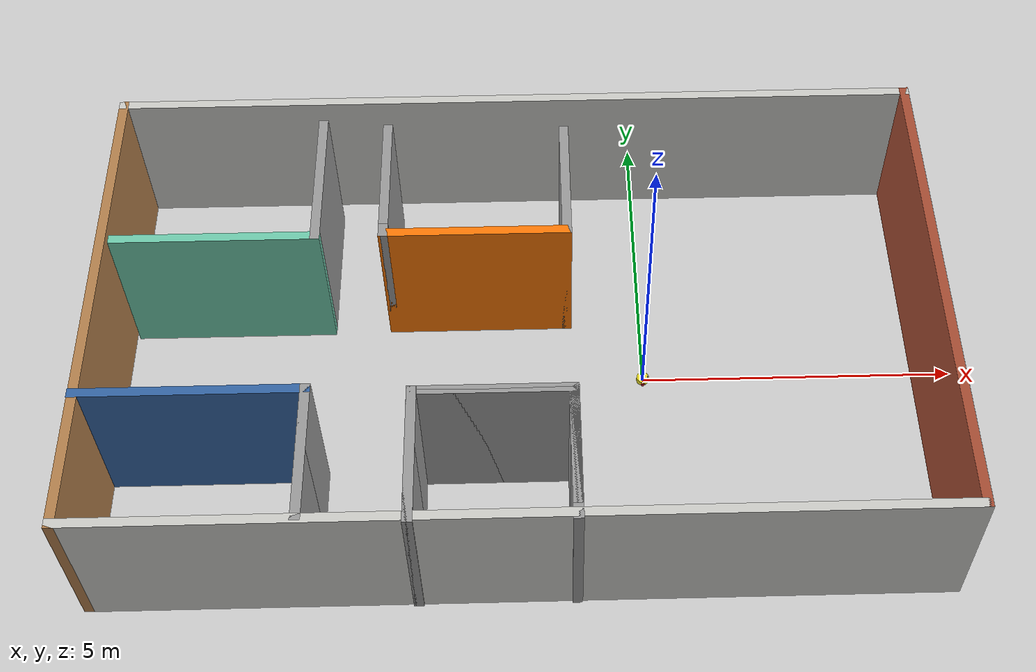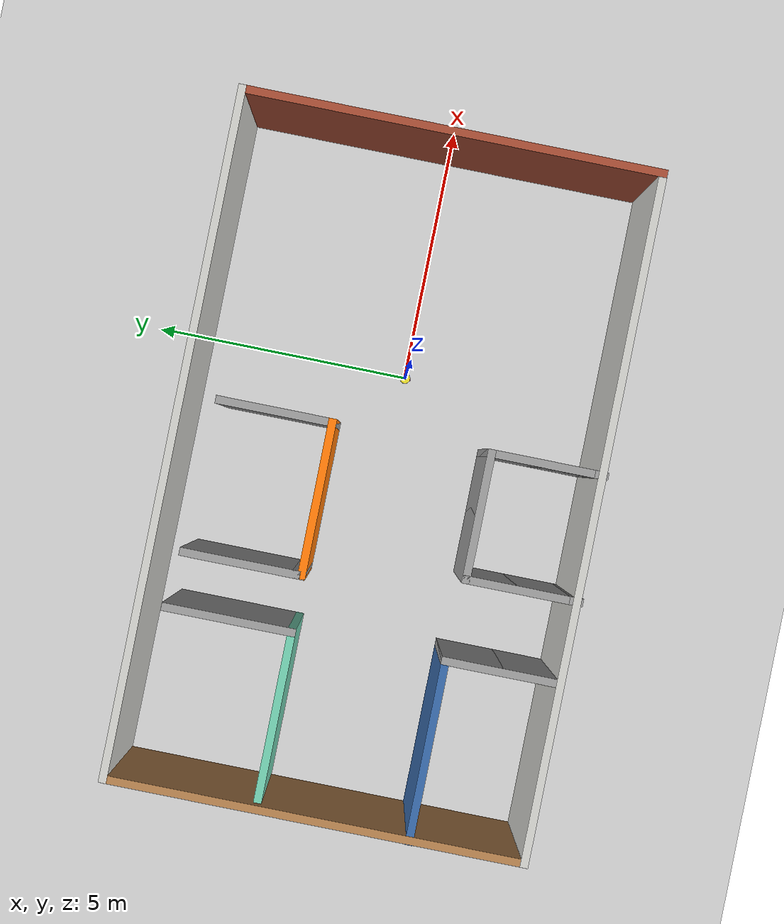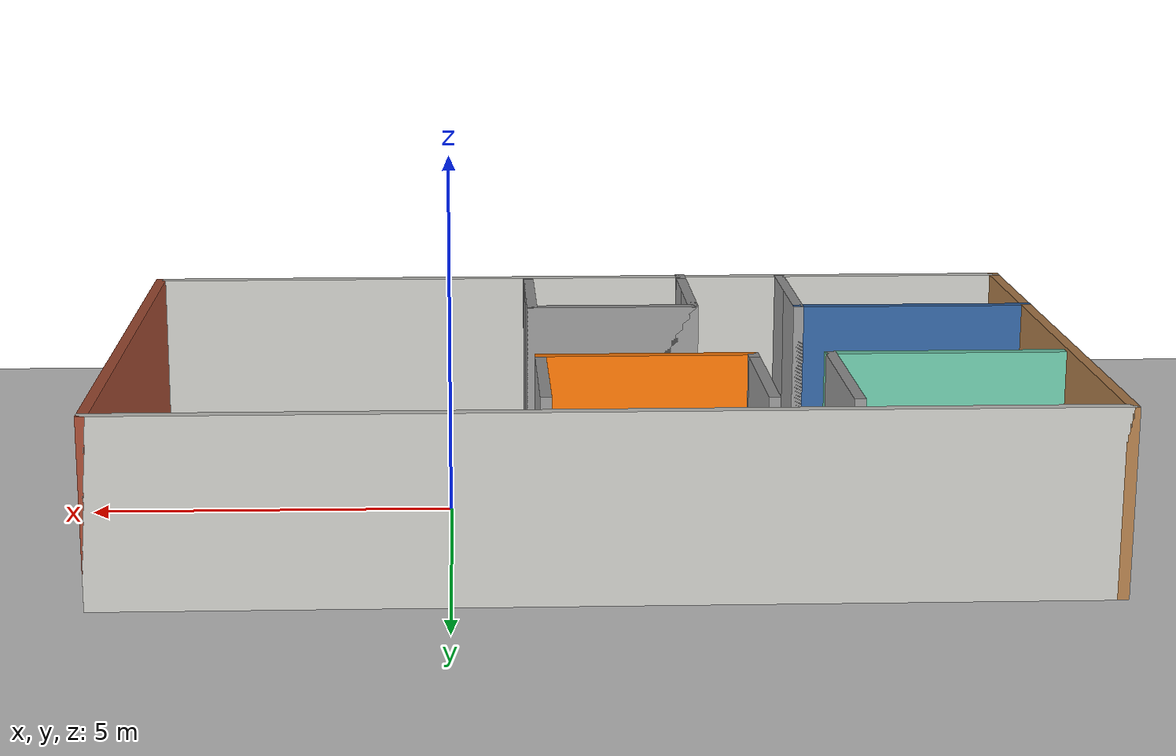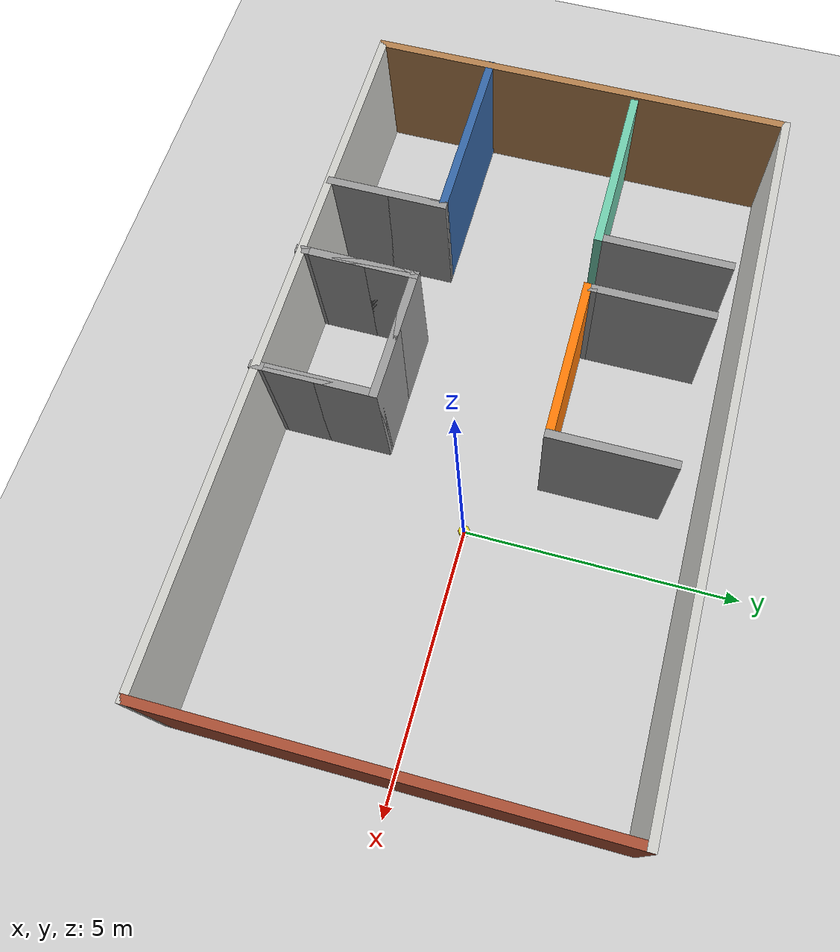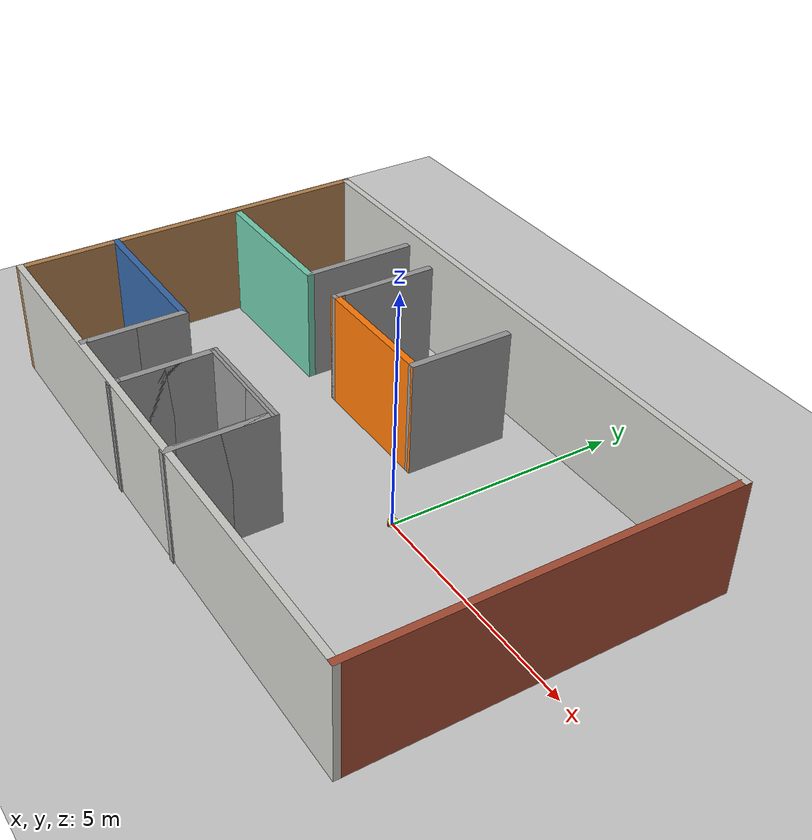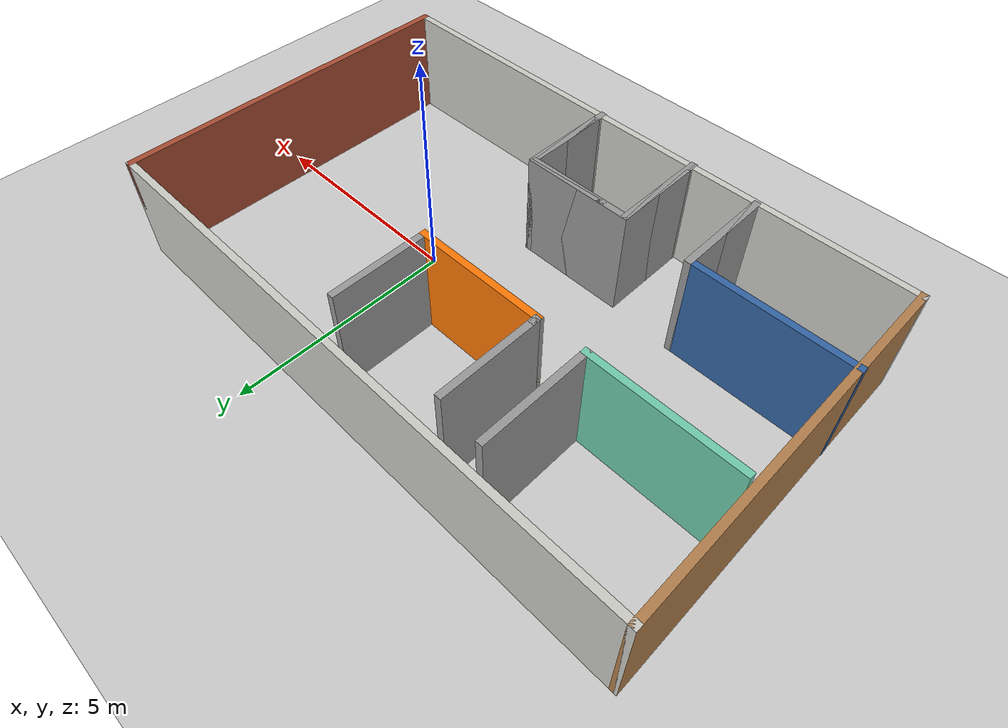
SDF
<sdf version="1.6">
 <world name="default">
  <light name="sun" type="directional">
   <pose>0 0 10 0 -0 0</pose>
   <diffuse>0.8 0.8 0.8 1</diffuse>
   <specular>0.2 0.2 0.2 1</specular>
   <attenuation>
    <range>1000</range>
    <constant>0.9</constant>
    <linear>0.01</linear>
    <quadratic>0.001</quadratic>
   </attenuation>
   <direction>-0.5 0.1 -0.9</direction>
   <spot><inner_angle>0</inner_angle><outer_angle>0</outer_angle><falloff>0</falloff></spot>
  </light>
  <model name="ground_plane">
   <static>1</static>
   <link name="link">
    <collision name="collision">
     <geometry><plane><normal>0 0 1</normal><size>100 100</size></plane></geometry>
     <surface>
      <contact><collide_bitmask>65535</collide_bitmask></contact>
      <friction><ode><mu>100</mu><mu2>50</mu2></ode></friction>
     </surface>
    </collision>
    <visual name="visual">
     <cast_shadows>0</cast_shadows>
     <geometry><plane><normal>0 0 1</normal><size>100 100</size></plane></geometry>
     <material>
      <script><uri>file://media/materials/scripts/gazebo.material</uri><name>Gazebo/Grey</name></script>
     </material>
    </visual>
   </link>
  </model>
  <gravity>0 0 -9.8</gravity>
  <magnetic_field>6e-06 2.3e-05 -4.2e-05</magnetic_field>
  <atmosphere type="adiabatic"/>
  <physics name="default_physics" default="0" type="ode">
   <max_step_size>0.001</max_step_size>
   <real_time_factor>1</real_time_factor>
   <real_time_update_rate>1000</real_time_update_rate>
  </physics>
  <scene><ambient>0.4 0.4 0.4 1</ambient><background>0.7 0.7 0.7 1</background><shadows>1</shadows></scene>
  <spherical_coordinates>
   <surface_model>EARTH_WGS84</surface_model>
   <latitude_deg>0</latitude_deg>
   <longitude_deg>0</longitude_deg>
   <elevation>0</elevation>
   <heading_deg>0</heading_deg>
  </spherical_coordinates>
  <model name="box_house">
   <pose>-1.97643 0.05996 0 0 -0 0</pose>
   <link name="Wall_1">
    <collision name="Wall_1_Collision">
     <geometry><box><size>13 0.15 2.5</size></box></geometry>
     <pose>0 0 1.25 0 -0 0</pose>
    </collision>
    <visual name="Wall_1_Visual">
     <pose>0 0 1.25 0 -0 0</pose>
     <geometry><box><size>13 0.15 2.5</size></box></geometry>
     <material>
      <script><uri>file://media/materials/scripts/gazebo.material</uri><name>Gazebo/CeilingTiled</name></script>
      <ambient>1 1 1 1</ambient>
     </material>
     <meta><layer>0</layer></meta>
    </visual>
    <pose>0 3.925 0 0 -0 0</pose>
   </link>
   <link name="Wall_2">
    <collision name="Wall_2_Collision">
     <geometry><box><size>8 0.15 2.5</size></box></geometry>
     <pose>0 0 1.25 0 -0 0</pose>
    </collision>
    <visual name="Wall_2_Visual">
     <pose>0 0 1.25 0 -0 0</pose>
     <geometry><box><size>8 0.15 2.5</size></box></geometry>
     <material>
      <script><uri>file://media/materials/scripts/gazebo.material</uri><name>Gazebo/Bricks</name></script>
      <ambient>1 1 1 1</ambient>
     </material>
     <meta><layer>0</layer></meta>
    </visual>
    <pose>6.425 -0 0 0 -0 -1.5708</pose>
   </link>
   <link name="Wall_3">
    <collision name="Wall_3_Collision">
     <geometry><box><size>13 0.15 2.5</size></box></geometry>
     <pose>0 0 1.25 0 -0 0</pose>
    </collision>
    <visual name="Wall_3_Visual">
     <pose>0 0 1.25 0 -0 0</pose>
     <geometry><box><size>13 0.15 2.5</size></box></geometry>
     <material>
      <script><uri>file://media/materials/scripts/gazebo.material</uri><name>Gazebo/CeilingTiled</name></script>
      <ambient>1 1 1 1</ambient>
     </material>
     <meta><layer>0</layer></meta>
    </visual>
    <pose>0 -3.925 0 0 -0 3.14159</pose>
   </link>
   <link name="Wall_4">
    <collision name="Wall_4_Collision">
     <geometry><box><size>8 0.15 2.5</size></box></geometry>
     <pose>0 0 1.25 0 -0 0</pose>
    </collision>
    <visual name="Wall_4_Visual">
     <pose>0 0 1.25 0 -0 0</pose>
     <geometry><box><size>8 0.15 2.5</size></box></geometry>
     <material>
      <script><uri>file://media/materials/scripts/gazebo.material</uri><name>Gazebo/Wood</name></script>
      <ambient>1 1 1 1</ambient>
     </material>
     <meta><layer>0</layer></meta>
    </visual>
    <pose>-6.425 -0 0 0 -0 1.5708</pose>
   </link>
   <static>1</static>
  </model>
  <audio><device>default</device></audio>
  <model name="mycar">
   <link name="base_footprint">
    <inertial>
     <pose>0.00127 0 0.093611 0 -0 0</pose>
     <mass>0.63</mass>
     <inertia>
      <ixx>0.00557395</ixx>
      <ixy>0</ixy>
      <ixz>-1.11111e-05</ixz>
      <iyy>0.00563694</iyy>
      <iyz>0</iyz>
      <izz>0.00261003</izz>
     </inertia>
    </inertial>
    <collision name="base_footprint_fixed_joint_lump__base_link_collision">
     <pose>0 0 0.055 0 -0 0</pose>
     <geometry><cylinder><length>0.08</length><radius>0.1</radius></cylinder></geometry>
    </collision>
    <collision name="base_footprint_fixed_joint_lump__camera_collision_1">
     <pose>0.08 0 0.1075 0 -0 0</pose>
     <geometry><box><size>0.01 0.025 0.025</size></box></geometry>
    </collision>
    <collision name="base_footprint_fixed_joint_lump__support_collision_2">
     <pose>0 0 0.17 0 -0 0</pose>
     <geometry><cylinder><length>0.15</length><radius>0.01</radius></cylinder></geometry>
    </collision>
    <collision name="base_footprint_fixed_joint_lump__laser_collision_3">
     <pose>0 0 0.27 0 -0 0</pose>
     <geometry><cylinder><length>0.05</length><radius>0.03</radius></cylinder></geometry>
    </collision>
    <visual name="base_footprint_visual"><geometry><sphere><radius>0.001</radius></sphere></geometry></visual>
    <visual name="base_footprint_fixed_joint_lump__base_link_visual_1">
     <pose>0 0 0.055 0 -0 0</pose>
     <geometry><cylinder><length>0.08</length><radius>0.1</radius></cylinder></geometry>
     <material>
      <script><name>Gazebo/Yellow</name><uri>file://media/materials/scripts/gazebo.material</uri></script>
     </material>
    </visual>
    <visual name="base_footprint_fixed_joint_lump__camera_visual_2">
     <pose>0.08 0 0.1075 0 -0 0</pose>
     <geometry><box><size>0.01 0.025 0.025</size></box></geometry>
     <material>
      <script><name>Gazebo/Blue</name><uri>file://media/materials/scripts/gazebo.material</uri></script>
     </material>
    </visual>
    <visual name="base_footprint_fixed_joint_lump__support_visual_3">
     <pose>0 0 0.17 0 -0 0</pose>
     <geometry><cylinder><length>0.15</length><radius>0.01</radius></cylinder></geometry>
     <material>
      <script><name>Gazebo/White</name><uri>file://media/materials/scripts/gazebo.material</uri></script>
     </material>
    </visual>
    <visual name="base_footprint_fixed_joint_lump__laser_visual_4">
     <pose>0 0 0.27 0 -0 0</pose>
     <geometry><cylinder><length>0.05</length><radius>0.03</radius></cylinder></geometry>
     <material>
      <script><name>Gazebo/Black</name><uri>file://media/materials/scripts/gazebo.material</uri></script>
     </material>
    </visual>
    <sensor name="camera_node" type="camera">
     <update_rate>30</update_rate>
     <camera name="head">
      <horizontal_fov>1.39626</horizontal_fov>
      <image><width>1280</width><height>720</height><format>R8G8B8</format></image>
      <clip><near>0.02</near><far>300</far></clip>
      <noise><type>gaussian</type><mean>0</mean><stddev>0.007</stddev></noise>
     </camera>
     <plugin name="gazebo_camera" filename="libgazebo_ros_camera.so">
      <alwaysOn>1</alwaysOn>
      <updateRate>0.0</updateRate>
      <cameraName>/camera</cameraName>
      <imageTopicName>image_raw</imageTopicName>
      <cameraInfoTopicName>camera_info</cameraInfoTopicName>
      <frameName>camera</frameName>
      <hackBaseline>0.07</hackBaseline>
      <distortionK1>0.0</distortionK1>
      <distortionK2>0.0</distortionK2>
      <distortionK3>0.0</distortionK3>
      <distortionT1>0.0</distortionT1>
      <distortionT2>0.0</distortionT2>
      <robotNamespace>/</robotNamespace>
     </plugin>
     <pose>0.08 0 0.1075 0 -0 0</pose>
    </sensor>
   </link>
   <link name="back_wheel">
    <pose>-0.0925 0 0.0075 0 -0 0</pose>
    <inertial>
     <mass>0.03</mass>
     <inertia>
      <ixx>6.75e-07</ixx>
      <ixy>0</ixy>
      <ixz>0</ixz>
      <iyy>6.75e-07</iyy>
      <iyz>0</iyz>
      <izz>6.75e-07</izz>
     </inertia>
    </inertial>
    <collision name="back_wheel_collision">
     <geometry><sphere><radius>0.0075</radius></sphere></geometry>
    </collision>
    <visual name="back_wheel_visual">
     <geometry><sphere><radius>0.0075</radius></sphere></geometry>
     <material>
      <script><name>Gazebo/Red</name><uri>file://media/materials/scripts/gazebo.material</uri></script>
     </material>
    </visual>
   </link>
   <joint name="back_wheel2base_link" type="revolute">
    <child>back_wheel</child>
    <parent>base_footprint</parent>
    <axis>
     <xyz>1 1 1</xyz>
     <limit><lower>-1e+16</lower><upper>1e+16</upper></limit>
     <dynamics><spring_reference>0</spring_reference><spring_stiffness>0</spring_stiffness></dynamics>
     <use_parent_model_frame>1</use_parent_model_frame>
    </axis>
   </joint>
   <link name="front_wheel">
    <pose>0.0925 0 0.0075 0 -0 0</pose>
    <inertial>
     <mass>0.03</mass>
     <inertia>
      <ixx>6.75e-07</ixx>
      <ixy>0</ixy>
      <ixz>0</ixz>
      <iyy>6.75e-07</iyy>
      <iyz>0</iyz>
      <izz>6.75e-07</izz>
     </inertia>
    </inertial>
    <collision name="front_wheel_collision">
     <geometry><sphere><radius>0.0075</radius></sphere></geometry>
    </collision>
    <visual name="front_wheel_visual">
     <geometry><sphere><radius>0.0075</radius></sphere></geometry>
     <material>
      <script><name>Gazebo/Red</name><uri>file://media/materials/scripts/gazebo.material</uri></script>
     </material>
    </visual>
   </link>
   <joint name="front_wheel2base_link" type="revolute">
    <child>front_wheel</child>
    <parent>base_footprint</parent>
    <axis>
     <xyz>1 1 1</xyz>
     <limit><lower>-1e+16</lower><upper>1e+16</upper></limit>
     <dynamics><spring_reference>0</spring_reference><spring_stiffness>0</spring_stiffness></dynamics>
     <use_parent_model_frame>1</use_parent_model_frame>
    </axis>
   </joint>
   <link name="left_wheel">
    <pose>0 0.1 0.0325 0 -0 0</pose>
    <inertial>
     <mass>0.05</mass>
     <inertia>
      <ixx>1.41406e-05</ixx>
      <ixy>0</ixy>
      <ixz>0</ixz>
      <iyy>1.41406e-05</iyy>
      <iyz>0</iyz>
      <izz>2.64063e-05</izz>
     </inertia>
    </inertial>
    <collision name="left_wheel_collision">
     <pose>0 0 0 1.5708 -0 0</pose>
     <geometry><cylinder><length>0.015</length><radius>0.0325</radius></cylinder></geometry>
    </collision>
    <visual name="left_wheel_visual">
     <pose>0 0 0 1.5708 -0 0</pose>
     <geometry><cylinder><length>0.015</length><radius>0.0325</radius></cylinder></geometry>
     <material>
      <script><name>Gazebo/Red</name><uri>file://media/materials/scripts/gazebo.material</uri></script>
     </material>
    </visual>
   </link>
   <joint name="left_wheel2base_link" type="revolute">
    <child>left_wheel</child>
    <parent>base_footprint</parent>
    <axis>
     <xyz>0 1 0</xyz>
     <limit><lower>-1e+16</lower><upper>1e+16</upper></limit>
     <dynamics><spring_reference>0</spring_reference><spring_stiffness>0</spring_stiffness></dynamics>
     <use_parent_model_frame>1</use_parent_model_frame>
    </axis>
   </joint>
   <link name="right_wheel">
    <pose>0 -0.1 0.0325 0 -0 0</pose>
    <inertial>
     <mass>0.05</mass>
     <inertia>
      <ixx>1.41406e-05</ixx>
      <ixy>0</ixy>
      <ixz>0</ixz>
      <iyy>1.41406e-05</iyy>
      <iyz>0</iyz>
      <izz>2.64063e-05</izz>
     </inertia>
    </inertial>
    <collision name="right_wheel_collision">
     <pose>0 0 0 1.5708 -0 0</pose>
     <geometry><cylinder><length>0.015</length><radius>0.0325</radius></cylinder></geometry>
    </collision>
    <visual name="right_wheel_visual">
     <pose>0 0 0 1.5708 -0 0</pose>
     <geometry><cylinder><length>0.015</length><radius>0.0325</radius></cylinder></geometry>
     <material>
      <script><name>Gazebo/Red</name><uri>file://media/materials/scripts/gazebo.material</uri></script>
     </material>
    </visual>
   </link>
   <joint name="right_wheel2base_link" type="revolute">
    <child>right_wheel</child>
    <parent>base_footprint</parent>
    <axis>
     <xyz>0 1 0</xyz>
     <limit><lower>-1e+16</lower><upper>1e+16</upper></limit>
     <dynamics><spring_reference>0</spring_reference><spring_stiffness>0</spring_stiffness></dynamics>
     <use_parent_model_frame>1</use_parent_model_frame>
    </axis>
   </joint>
   <static>0</static>
   <plugin name="differential_drive_controller" filename="libgazebo_ros_diff_drive.so">
    <rosDebugLevel>Debug</rosDebugLevel>
    <publishWheelTF>1</publishWheelTF>
    <robotNamespace>/</robotNamespace>
    <publishTf>1</publishTf>
    <publishWheelJointState>1</publishWheelJointState>
    <alwaysOn>1</alwaysOn>
    <updateRate>100.0</updateRate>
    <legacyMode>1</legacyMode>
    <leftJoint>left_wheel2base_link</leftJoint>
    <rightJoint>right_wheel2base_link</rightJoint>
    <wheelSeparation>0.2</wheelSeparation>
    <wheelDiameter>0.065</wheelDiameter>
    <broadcastTF>1</broadcastTF>
    <wheelTorque>30</wheelTorque>
    <wheelAcceleration>1.8</wheelAcceleration>
    <commandTopic>cmd_vel</commandTopic>
    <odometryFrame>odom</odometryFrame>
    <odometryTopic>odom</odometryTopic>
    <robotBaseFrame>base_footprint</robotBaseFrame>
   </plugin>
   <pose>0.00013 -0.000116 0 0 0 -0.001323</pose>
  </model>
  <model name="room">
   <pose>-4.79399 -0.205593 0 0 -0 0</pose>
   <link name="Wall_13">
    <collision name="Wall_13_Collision">
     <geometry><box><size>2.5 0.15 2.5</size></box></geometry>
     <pose>0 0 1.25 0 -0 0</pose>
    </collision>
    <visual name="Wall_13_Visual">
     <pose>0 0 1.25 0 -0 0</pose>
     <geometry><box><size>2.5 0.15 2.5</size></box></geometry>
     <material>
      <script><uri>file://media/materials/scripts/gazebo.material</uri><name>Gazebo/Grey</name></script>
      <ambient>1 1 1 1</ambient>
     </material>
     <meta><layer>0</layer></meta>
    </visual>
    <pose>-0.308094 2.516 0 0 -0 -1.5708</pose>
   </link>
   <link name="Wall_14">
    <collision name="Wall_14_Collision">
     <geometry><box><size>3.25 0.15 2.5</size></box></geometry>
     <pose>0 0 1.25 0 -0 0</pose>
    </collision>
    <visual name="Wall_14_Visual">
     <pose>0 0 1.25 0 -0 0</pose>
     <geometry><box><size>3.25 0.15 2.5</size></box></geometry>
     <material>
      <script><uri>file://media/materials/scripts/gazebo.material</uri><name>Gazebo/Grey</name></script>
      <ambient>0.435294 0.796078 0.67451 1</ambient>
     </material>
     <meta><layer>0</layer></meta>
    </visual>
    <pose>-1.85809 1.341 0 0 -0 3.14159</pose>
   </link>
   <link name="Wall_16">
    <collision name="Wall_16_Collision">
     <geometry><box><size>2 0.15 2.5</size></box></geometry>
     <pose>0 0 1.25 0 -0 0</pose>
    </collision>
    <visual name="Wall_16_Visual">
     <pose>0 0 1.25 0 -0 0</pose>
     <geometry><box><size>2 0.15 2.5</size></box></geometry>
     <material>
      <script><uri>file://media/materials/scripts/gazebo.material</uri><name>Gazebo/Grey</name></script>
      <ambient>1 1 1 1</ambient>
     </material>
     <meta><layer>0</layer></meta>
    </visual>
    <pose>1.26601 -2.516 0 0 -0 -1.5708</pose>
   </link>
   <link name="Wall_17">
    <collision name="Wall_17_Collision">
     <geometry><box><size>2 0.15 2.5</size></box></geometry>
     <pose>0 0 1.25 0 -0 0</pose>
    </collision>
    <visual name="Wall_17_Visual">
     <pose>0 0 1.25 0 -0 0</pose>
     <geometry><box><size>2 0.15 2.5</size></box></geometry>
     <material>
      <script><uri>file://media/materials/scripts/gazebo.material</uri><name>Gazebo/Grey</name></script>
      <ambient>1 1 1 1</ambient>
     </material>
     <meta><layer>0</layer></meta>
    </visual>
    <pose>1.26601 -2.516 0 0 -0 1.5708</pose>
   </link>
   <link name="Wall_18">
    <collision name="Wall_18_Collision">
     <geometry><box><size>0.15 0.15 2.5</size></box></geometry>
     <pose>0 0 1.25 0 -0 0</pose>
    </collision>
    <visual name="Wall_18_Visual">
     <pose>0 0 1.25 0 -0 0</pose>
     <geometry><box><size>0.15 0.15 2.5</size></box></geometry>
     <material>
      <script><uri>file://media/materials/scripts/gazebo.material</uri><name>Gazebo/Grey</name></script>
      <ambient>1 1 1 1</ambient>
     </material>
     <meta><layer>0</layer></meta>
    </visual>
    <pose>1.26601 -1.591 0 0 -0 0</pose>
   </link>
   <link name="Wall_19">
    <collision name="Wall_19_Collision">
     <geometry><box><size>2.5 0.15 2.5</size></box></geometry>
     <pose>0 0 1.25 0 -0 0</pose>
    </collision>
    <visual name="Wall_19_Visual">
     <pose>0 0 1.25 0 -0 0</pose>
     <geometry><box><size>2.5 0.15 2.5</size></box></geometry>
     <material>
      <script><uri>file://media/materials/scripts/gazebo.material</uri><name>Gazebo/Grey</name></script>
      <ambient>1 1 1 1</ambient>
     </material>
     <meta><layer>0</layer></meta>
    </visual>
    <pose>2.44101 -1.591 0 0 -0 0</pose>
   </link>
   <link name="Wall_20">
    <collision name="Wall_20_Collision">
     <geometry><box><size>2 0.15 2.5</size></box></geometry>
     <pose>0 0 1.25 0 -0 0</pose>
    </collision>
    <visual name="Wall_20_Visual">
     <pose>0 0 1.25 0 -0 0</pose>
     <geometry><box><size>2 0.15 2.5</size></box></geometry>
     <material>
      <script><uri>file://media/materials/scripts/gazebo.material</uri><name>Gazebo/Grey</name></script>
      <ambient>1 1 1 1</ambient>
     </material>
     <meta><layer>0</layer></meta>
    </visual>
    <pose>3.61601 -2.516 0 0 -0 -1.5708</pose>
   </link>
   <link name="Wall_21">
    <collision name="Wall_21_Collision">
     <geometry><box><size>2 0.15 2.5</size></box></geometry>
     <pose>0 0 1.25 0 -0 0</pose>
    </collision>
    <visual name="Wall_21_Visual">
     <pose>0 0 1.25 0 -0 0</pose>
     <geometry><box><size>2 0.15 2.5</size></box></geometry>
     <material>
      <script><uri>file://media/materials/scripts/gazebo.material</uri><name>Gazebo/Grey</name></script>
      <ambient>1 1 1 1</ambient>
     </material>
     <meta><layer>0</layer></meta>
    </visual>
    <pose>3.61601 -2.516 0 0 -0 1.5708</pose>
   </link>
   <link name="Wall_22">
    <collision name="Wall_22_Collision">
     <geometry><box><size>2.5 0.15 2.5</size></box></geometry>
     <pose>0 0 1.25 0 -0 0</pose>
    </collision>
    <visual name="Wall_22_Visual">
     <pose>0 0 1.25 0 -0 0</pose>
     <geometry><box><size>2.5 0.15 2.5</size></box></geometry>
     <material>
      <script><uri>file://media/materials/scripts/gazebo.material</uri><name>Gazebo/Grey</name></script>
      <ambient>1 1 1 1</ambient>
     </material>
     <meta><layer>0</layer></meta>
    </visual>
    <pose>2.44101 -1.591 0 0 -0 3.14159</pose>
   </link>
   <link name="Wall_23">
    <collision name="Wall_23_Collision">
     <geometry><box><size>2.25 0.15 2.5</size></box></geometry>
     <pose>0 0 1.25 0 -0 0</pose>
    </collision>
    <visual name="Wall_23_Visual">
     <pose>0 0 1.25 0 -0 0</pose>
     <geometry><box><size>2.25 0.15 2.5</size></box></geometry>
     <material>
      <script><uri>file://media/materials/scripts/gazebo.material</uri><name>Gazebo/Grey</name></script>
      <ambient>1 1 1 1</ambient>
     </material>
     <meta><layer>0</layer></meta>
    </visual>
    <pose>1.26601 -2.641 0 0 -0 -1.5708</pose>
   </link>
   <link name="Wall_24">
    <collision name="Wall_24_Collision">
     <geometry><box><size>2.25 0.15 2.5</size></box></geometry>
     <pose>0 0 1.25 0 -0 0</pose>
    </collision>
    <visual name="Wall_24_Visual">
     <pose>0 0 1.25 0 -0 0</pose>
     <geometry><box><size>2.25 0.15 2.5</size></box></geometry>
     <material>
      <script><uri>file://media/materials/scripts/gazebo.material</uri><name>Gazebo/Grey</name></script>
      <ambient>1 1 1 1</ambient>
     </material>
     <meta><layer>0</layer></meta>
    </visual>
    <pose>1.26601 -2.641 0 0 -0 1.5708</pose>
   </link>
   <link name="Wall_25">
    <collision name="Wall_25_Collision">
     <geometry><box><size>2.5 0.15 2.5</size></box></geometry>
     <pose>0 0 1.25 0 -0 0</pose>
    </collision>
    <visual name="Wall_25_Visual">
     <pose>0 0 1.25 0 -0 0</pose>
     <geometry><box><size>2.5 0.15 2.5</size></box></geometry>
     <material>
      <script><uri>file://media/materials/scripts/gazebo.material</uri><name>Gazebo/Grey</name></script>
      <ambient>0.203922 0.396078 0.643137 1</ambient>
     </material>
     <meta><layer>0</layer></meta>
    </visual>
    <pose>2.44101 -1.591 0 0 -0 0</pose>
   </link>
   <link name="Wall_26">
    <collision name="Wall_26_Collision">
     <geometry><box><size>2.25 0.15 2.5</size></box></geometry>
     <pose>0 0 1.25 0 -0 0</pose>
    </collision>
    <visual name="Wall_26_Visual">
     <pose>0 0 1.25 0 -0 0</pose>
     <geometry><box><size>2.25 0.15 2.5</size></box></geometry>
     <material>
      <script><uri>file://media/materials/scripts/gazebo.material</uri><name>Gazebo/Grey</name></script>
      <ambient>1 1 1 1</ambient>
     </material>
     <meta><layer>0</layer></meta>
    </visual>
    <pose>3.61601 -2.641 0 0 -0 -1.5708</pose>
   </link>
   <link name="Wall_28">
    <collision name="Wall_28_Collision">
     <geometry><box><size>2.25 0.15 2.5</size></box></geometry>
     <pose>0 0 1.25 0 -0 0</pose>
    </collision>
    <visual name="Wall_28_Visual">
     <pose>0 0 1.25 0 -0 0</pose>
     <geometry><box><size>2.25 0.15 2.5</size></box></geometry>
     <material>
      <script><uri>file://media/materials/scripts/gazebo.material</uri><name>Gazebo/Grey</name></script>
      <ambient>1 1 1 1</ambient>
     </material>
     <meta><layer>0</layer></meta>
    </visual>
    <pose>0.74131 2.51857 0 0 -0 -1.5708</pose>
   </link>
   <link name="Wall_30">
    <collision name="Wall_30_Collision">
     <geometry><box><size>0.25 0.15 2.5</size></box></geometry>
     <pose>0 0 1.25 0 -0 0</pose>
    </collision>
    <visual name="Wall_30_Visual">
     <pose>0 0 1.25 0 -0 0</pose>
     <geometry><box><size>0.25 0.15 2.5</size></box></geometry>
     <material>
      <script><uri>file://media/materials/scripts/gazebo.material</uri><name>Gazebo/Grey</name></script>
      <ambient>1 1 1 1</ambient>
     </material>
     <meta><layer>0</layer></meta>
    </visual>
    <pose>0.74131 1.41857 0 0 -0 -1.5708</pose>
   </link>
   <link name="Wall_31">
    <collision name="Wall_31_Collision">
     <geometry><box><size>3 0.15 2.5</size></box></geometry>
     <pose>0 0 1.25 0 -0 0</pose>
    </collision>
    <visual name="Wall_31_Visual">
     <pose>0 0 1.25 0 -0 0</pose>
     <geometry><box><size>3 0.15 2.5</size></box></geometry>
     <material>
      <script><uri>file://media/materials/scripts/gazebo.material</uri><name>Gazebo/Grey</name></script>
      <ambient>0.996078 0.47451 0.0196078 1</ambient>
     </material>
     <meta><layer>0</layer></meta>
    </visual>
    <pose>2.16631 1.36857 0 0 -0 0</pose>
   </link>
   <link name="Wall_32">
    <collision name="Wall_32_Collision">
     <geometry><box><size>2.25 0.15 2.5</size></box></geometry>
     <pose>0 0 1.25 0 -0 0</pose>
    </collision>
    <visual name="Wall_32_Visual">
     <pose>0 0 1.25 0 -0 0</pose>
     <geometry><box><size>2.25 0.15 2.5</size></box></geometry>
     <material>
      <script><uri>file://media/materials/scripts/gazebo.material</uri><name>Gazebo/Grey</name></script>
      <ambient>1 1 1 1</ambient>
     </material>
     <meta><layer>0</layer></meta>
    </visual>
    <pose>3.59131 2.41857 0 0 -0 1.5708</pose>
   </link>
   <link name="Wall_4">
    <collision name="Wall_4_Collision">
     <geometry><box><size>2.25 0.15 2.5</size></box></geometry>
     <pose>0 0 1.25 0 -0 0</pose>
    </collision>
    <visual name="Wall_4_Visual">
     <pose>0 0 1.25 0 -0 0</pose>
     <geometry><box><size>2.25 0.15 2.5</size></box></geometry>
     <material>
      <script><uri>file://media/materials/scripts/gazebo.material</uri><name>Gazebo/Grey</name></script>
      <ambient>1 1 1 1</ambient>
     </material>
     <meta><layer>0</layer></meta>
    </visual>
    <pose>-0.266011 -2.56441 0 0 -0 -1.5708</pose>
   </link>
   <link name="Wall_5">
    <collision name="Wall_5_Collision">
     <geometry><box><size>2.25 0.15 2.5</size></box></geometry>
     <pose>0 0 1.25 0 -0 0</pose>
    </collision>
    <visual name="Wall_5_Visual">
     <pose>0 0 1.25 0 -0 0</pose>
     <geometry><box><size>2.25 0.15 2.5</size></box></geometry>
     <material>
      <script><uri>file://media/materials/scripts/gazebo.material</uri><name>Gazebo/Grey</name></script>
      <ambient>1 1 1 1</ambient>
     </material>
     <meta><layer>0</layer></meta>
    </visual>
    <pose>-0.266011 -2.56441 0 0 -0 1.5708</pose>
   </link>
   <link name="Wall_6">
    <collision name="Wall_6_Collision">
     <geometry><box><size>3.5 0.15 2.5</size></box></geometry>
     <pose>0 0 1.25 0 -0 0</pose>
    </collision>
    <visual name="Wall_6_Visual">
     <pose>0 0 1.25 0 -0 0</pose>
     <geometry><box><size>3.5 0.15 2.5</size></box></geometry>
     <material>
      <script><uri>file://media/materials/scripts/gazebo.material</uri><name>Gazebo/Grey</name></script>
      <ambient>0.203922 0.396078 0.643137 1</ambient>
     </material>
     <meta><layer>0</layer></meta>
    </visual>
    <pose>-1.94101 -1.51441 0 0 -0 3.14159</pose>
   </link>
   <static>1</static>
  </model>
 </world>
</sdf>
